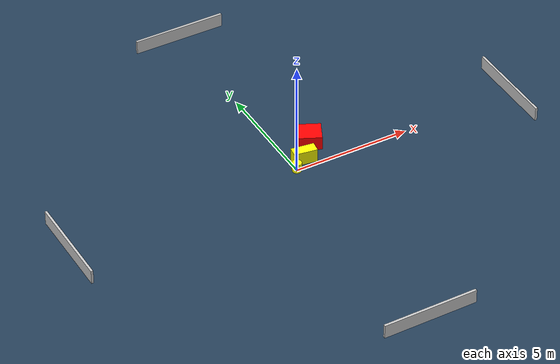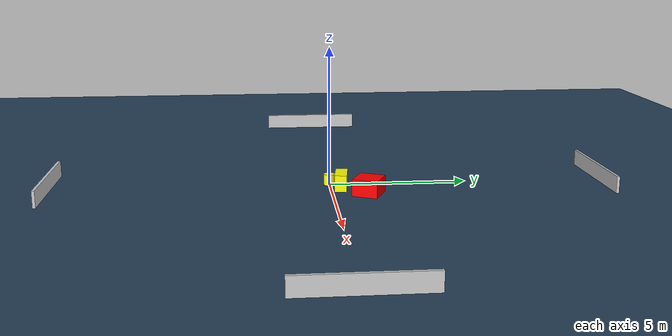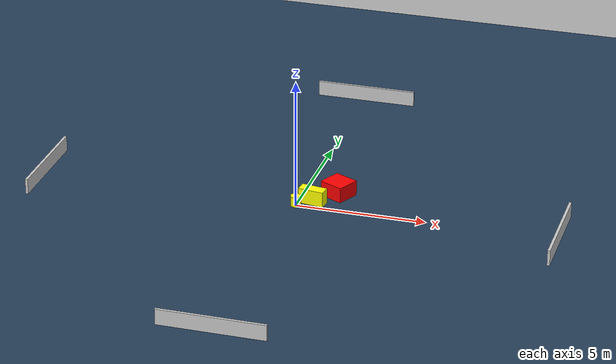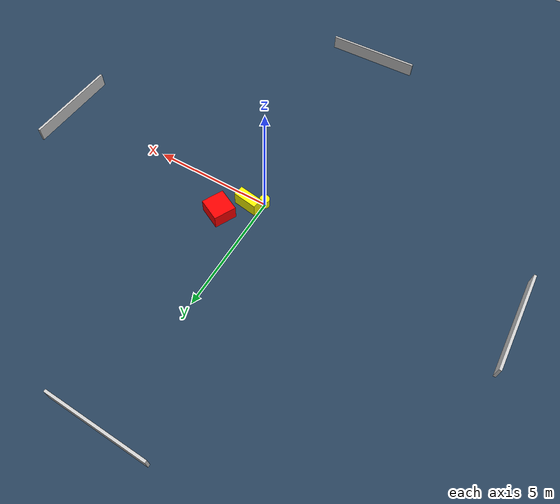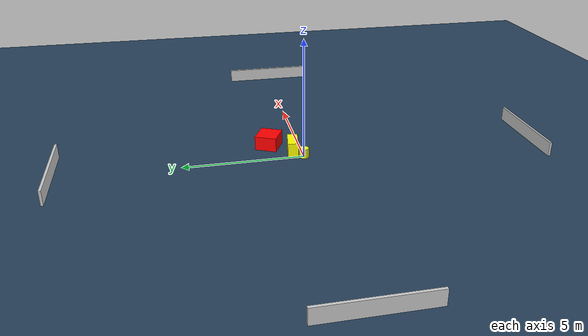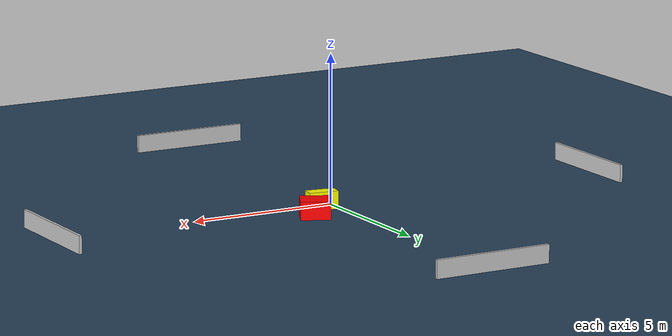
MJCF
<?xml version="1.0" ?>
<mujoco model="generated_environment">
  <option timestep="0.01" integrator="RK4" cone="elliptic"/>
  <default>
    <geom density="1"/>
  </default>
  <asset>
    <texture builtin="gradient" height="3072" name="skybox" rgb1="0.3 0.5 0.7" rgb2="0 0 0" type="skybox" width="512"/>
    <texture builtin="checker" height="300" name="groundplane" rgb1="0.2 0.3 0.4" rgb2="0.1 0.2 0.3" type="2d" width="300"/>
    <material name="groundplane" reflectance="0.2" texrepeat="5 5" texture="groundplane"/>
  </asset>
  <worldbody>
    <light dir="0 0 -1" directional="true" pos="0 0 1.5"/>
    <geom condim="3" friction="0.5 0.005 0.001" material="groundplane" name="floor" pos="0 0 0" size="0 0 0.05" type="plane"/>
    <body name="walls">
      <geom name="wall_1" condim="4" pos="-10.0 0.0 0.3" rgba="0.800000011920929 0.800000011920929 0.800000011920929 1.0" size="0.05 2.0 0.3" type="box"/>
      <geom name="wall_2" condim="4" pos="10.0 0.0 0.3" rgba="0.800000011920929 0.800000011920929 0.800000011920929 1.0" size="0.05 2.0 0.3" type="box"/>
      <geom name="wall_3" condim="4" pos="0.0 -10.0 0.3" rgba="0.800000011920929 0.800000011920929 0.800000011920929 1.0" size="2.0 0.05 0.3" type="box"/>
      <geom name="wall_4" condim="4" pos="0.0 10.0 0.3" rgba="0.800000011920929 0.800000011920929 0.800000011920929 1.0" size="2.0 0.05 0.3" type="box"/>
    </body>
    <body name="robot">
      <joint name="joint_x" type="slide" pos="0 0 0" axis="1 0 0"/>
      <joint name="joint_y" type="slide" pos="0 0 0" axis="0 1 0"/>
      <geom name="robot" type="cylinder" pos="0.0 0.0 0.2" size="0.2 0.2 0.0" mass="5.0" friction="1.0 0.005 0.0001" condim="4" rgba="1.0 1.0 0.0 1.0"/>
    </body>
    <body name="obstacle_1_movable">
      <geom name="obstacle_1_movable" condim="4" pos="0.5431134135391116 0.3779964225975884 0.3" euler="0 0 81.72747055755212" friction="0.0 0.005 0.001" rgba="1.0 1.0 0.0 1.0" size="0.2172303220947595 0.4972821727765745 0.3" type="box" mass="0.1"/>
      <joint type="free"/>
    </body>
    <body name="obstacle_2_static">
      <geom name="obstacle_2_static" condim="4" pos="1.303657136473114 1.272610168102292 0.3" euler="0 0 64.17612777328652" friction="0.0 0.005 0.001" rgba="1.0 0.0 0.0 1.0" size="0.45924313489198365 0.48717444820859135 0.3" type="box"/>
    </body>
  </worldbody>
  <actuator>
    <motor name="actuator_x" joint="joint_x" gear="1" ctrlrange="-1 1"/>
    <motor name="actuator_y" joint="joint_y" gear="1" ctrlrange="-1 1"/>
  </actuator>
</mujoco>
